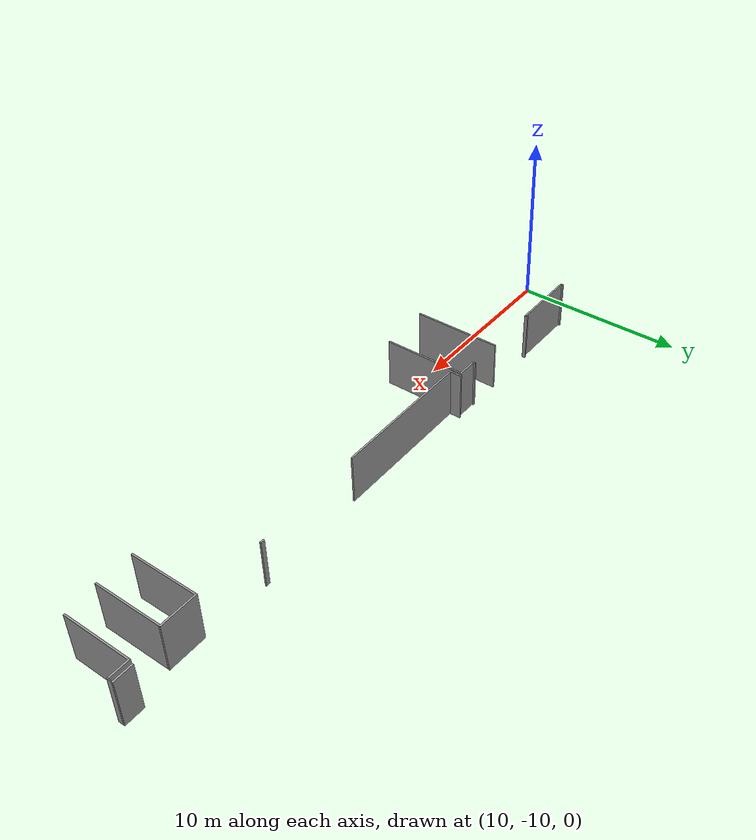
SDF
<sdf version="1.4">
 <model name="RussianRestaurant">
  <static>1</static>
  <link name="Wall_87">
   <collision name="Wall_87_Collision">
    <geometry><box><size>0.10000 0.20000 3.00000</size></box></geometry>
    <pose>10.10000 -7.55000 0 0 0 0.00000</pose>
   </collision>
   <visual name="Wall_87_Visual">
    <geometry><box><size>0.10000 0.20000 3.00000</size></box></geometry>
    <material>
     <script><uri>file://media/materials/scripts/gazebo.material</uri><name>Gazebo/Grey</name></script>
    </material>
    <pose>10.10000 -7.55000 0 0 0 0.00000</pose>
   </visual>
  </link>
  <link name="Wall_88">
   <collision name="Wall_88_Collision">
    <geometry><box><size>0.10000 0.20000 3.00000</size></box></geometry>
    <pose>14.15000 -7.55000 0 0 0 0.00000</pose>
   </collision>
   <visual name="Wall_88_Visual">
    <geometry><box><size>0.10000 0.20000 3.00000</size></box></geometry>
    <material>
     <script><uri>file://media/materials/scripts/gazebo.material</uri><name>Gazebo/Grey</name></script>
    </material>
    <pose>14.15000 -7.55000 0 0 0 0.00000</pose>
   </visual>
  </link>
  <link name="Wall_89">
   <collision name="Wall_89_Collision">
    <geometry><box><size>0.10000 5.30000 3.00000</size></box></geometry>
    <pose>17.60000 -10.10000 0 0 0 0.00000</pose>
   </collision>
   <visual name="Wall_89_Visual">
    <geometry><box><size>0.10000 5.30000 3.00000</size></box></geometry>
    <material>
     <script><uri>file://media/materials/scripts/gazebo.material</uri><name>Gazebo/Grey</name></script>
    </material>
    <pose>17.60000 -10.10000 0 0 0 0.00000</pose>
   </visual>
  </link>
  <link name="Wall_90">
   <collision name="Wall_90_Collision">
    <geometry><box><size>0.10000 0.20000 3.00000</size></box></geometry>
    <pose>19.60000 -7.55000 0 0 0 0.00000</pose>
   </collision>
   <visual name="Wall_90_Visual">
    <geometry><box><size>0.10000 0.20000 3.00000</size></box></geometry>
    <material>
     <script><uri>file://media/materials/scripts/gazebo.material</uri><name>Gazebo/Grey</name></script>
    </material>
    <pose>19.60000 -7.55000 0 0 0 0.00000</pose>
   </visual>
  </link>
  <link name="Wall_91">
   <collision name="Wall_91_Collision">
    <geometry><box><size>0.10000 0.75000 3.00000</size></box></geometry>
    <pose>21.00000 -7.82500 0 0 0 0.00000</pose>
   </collision>
   <visual name="Wall_91_Visual">
    <geometry><box><size>0.10000 0.75000 3.00000</size></box></geometry>
    <material>
     <script><uri>file://media/materials/scripts/gazebo.material</uri><name>Gazebo/Grey</name></script>
    </material>
    <pose>21.00000 -7.82500 0 0 0 0.00000</pose>
   </visual>
  </link>
  <link name="Wall_92">
   <collision name="Wall_92_Collision">
    <geometry><box><size>3.95000 0.10000 3.00000</size></box></geometry>
    <pose>12.12500 -7.60000 0 0 0 0.00000</pose>
   </collision>
   <visual name="Wall_92_Visual">
    <geometry><box><size>3.95000 0.10000 3.00000</size></box></geometry>
    <material>
     <script><uri>file://media/materials/scripts/gazebo.material</uri><name>Gazebo/Grey</name></script>
    </material>
    <pose>12.12500 -7.60000 0 0 0 0.00000</pose>
   </visual>
  </link>
  <link name="Wall_93">
   <collision name="Wall_93_Collision">
    <geometry><box><size>1.20000 0.10000 3.00000</size></box></geometry>
    <pose>20.25000 -7.60000 0 0 0 0.00000</pose>
   </collision>
   <visual name="Wall_93_Visual">
    <geometry><box><size>1.20000 0.10000 3.00000</size></box></geometry>
    <material>
     <script><uri>file://media/materials/scripts/gazebo.material</uri><name>Gazebo/Grey</name></script>
    </material>
    <pose>20.25000 -7.60000 0 0 0 0.00000</pose>
   </visual>
  </link>
  <link name="Wall_94">
   <collision name="Wall_94_Collision">
    <geometry><box><size>1.15000 0.10000 3.00000</size></box></geometry>
    <pose>45.32500 -7.60000 0 0 0 0.00000</pose>
   </collision>
   <visual name="Wall_94_Visual">
    <geometry><box><size>1.15000 0.10000 3.00000</size></box></geometry>
    <material>
     <script><uri>file://media/materials/scripts/gazebo.material</uri><name>Gazebo/Grey</name></script>
    </material>
    <pose>45.32500 -7.60000 0 0 0 0.00000</pose>
   </visual>
  </link>
  <link name="Wall_95">
   <collision name="Wall_95_Collision">
    <geometry><box><size>0.10000 4.90000 3.00000</size></box></geometry>
    <pose>20.80000 -10.10000 0 0 0 0.00000</pose>
   </collision>
   <visual name="Wall_95_Visual">
    <geometry><box><size>0.10000 4.90000 3.00000</size></box></geometry>
    <material>
     <script><uri>file://media/materials/scripts/gazebo.material</uri><name>Gazebo/Grey</name></script>
    </material>
    <pose>20.80000 -10.10000 0 0 0 0.00000</pose>
   </visual>
  </link>
  <link name="Wall_96">
   <collision name="Wall_96_Collision">
    <geometry><box><size>0.05000 0.30000 3.00000</size></box></geometry>
    <pose>45.87500 -7.80000 0 0 0 0.00000</pose>
   </collision>
   <visual name="Wall_96_Visual">
    <geometry><box><size>0.05000 0.30000 3.00000</size></box></geometry>
    <material>
     <script><uri>file://media/materials/scripts/gazebo.material</uri><name>Gazebo/Grey</name></script>
    </material>
    <pose>45.87500 -7.80000 0 0 0 0.00000</pose>
   </visual>
  </link>
  <link name="Wall_97">
   <collision name="Wall_97_Collision">
    <geometry><box><size>1.20000 0.10000 3.00000</size></box></geometry>
    <pose>45.25000 -7.90000 0 0 0 0.00000</pose>
   </collision>
   <visual name="Wall_97_Visual">
    <geometry><box><size>1.20000 0.10000 3.00000</size></box></geometry>
    <material>
     <script><uri>file://media/materials/scripts/gazebo.material</uri><name>Gazebo/Grey</name></script>
    </material>
    <pose>45.25000 -7.90000 0 0 0 0.00000</pose>
   </visual>
  </link>
  <link name="Wall_98">
   <collision name="Wall_98_Collision">
    <geometry><box><size>0.25000 0.10000 3.00000</size></box></geometry>
    <pose>36.47500 -7.95000 0 0 0 0.00000</pose>
   </collision>
   <visual name="Wall_98_Visual">
    <geometry><box><size>0.25000 0.10000 3.00000</size></box></geometry>
    <material>
     <script><uri>file://media/materials/scripts/gazebo.material</uri><name>Gazebo/Grey</name></script>
    </material>
    <pose>36.47500 -7.95000 0 0 0 0.00000</pose>
   </visual>
  </link>
  <link name="Wall_99">
   <collision name="Wall_99_Collision">
    <geometry><box><size>0.10000 4.05000 3.00000</size></box></geometry>
    <pose>44.70000 -9.97500 0 0 0 0.00000</pose>
   </collision>
   <visual name="Wall_99_Visual">
    <geometry><box><size>0.10000 4.05000 3.00000</size></box></geometry>
    <material>
     <script><uri>file://media/materials/scripts/gazebo.material</uri><name>Gazebo/Grey</name></script>
    </material>
    <pose>44.70000 -9.97500 0 0 0 0.00000</pose>
   </visual>
  </link>
  <link name="Wall_100">
   <collision name="Wall_100_Collision">
    <geometry><box><size>8.60000 0.10000 3.00000</size></box></geometry>
    <pose>25.35000 -8.15000 0 0 0 0.00000</pose>
   </collision>
   <visual name="Wall_100_Visual">
    <geometry><box><size>8.60000 0.10000 3.00000</size></box></geometry>
    <material>
     <script><uri>file://media/materials/scripts/gazebo.material</uri><name>Gazebo/Grey</name></script>
    </material>
    <pose>25.35000 -8.15000 0 0 0 0.00000</pose>
   </visual>
  </link>
  <link name="Wall_101">
   <collision name="Wall_101_Collision">
    <geometry><box><size>2.25000 0.10000 3.00000</size></box></geometry>
    <pose>41.62500 -8.15000 0 0 0 0.00000</pose>
   </collision>
   <visual name="Wall_101_Visual">
    <geometry><box><size>2.25000 0.10000 3.00000</size></box></geometry>
    <material>
     <script><uri>file://media/materials/scripts/gazebo.material</uri><name>Gazebo/Grey</name></script>
    </material>
    <pose>41.62500 -8.15000 0 0 0 0.00000</pose>
   </visual>
  </link>
  <link name="Wall_102">
   <collision name="Wall_102_Collision">
    <geometry><box><size>0.10000 4.05000 3.00000</size></box></geometry>
    <pose>40.55000 -10.22500 0 0 0 0.00000</pose>
   </collision>
   <visual name="Wall_102_Visual">
    <geometry><box><size>0.10000 4.05000 3.00000</size></box></geometry>
    <material>
     <script><uri>file://media/materials/scripts/gazebo.material</uri><name>Gazebo/Grey</name></script>
    </material>
    <pose>40.55000 -10.22500 0 0 0 0.00000</pose>
   </visual>
  </link>
  <link name="Wall_103">
   <collision name="Wall_103_Collision">
    <geometry><box><size>0.10000 4.05000 3.00000</size></box></geometry>
    <pose>42.70000 -10.22500 0 0 0 0.00000</pose>
   </collision>
   <visual name="Wall_103_Visual">
    <geometry><box><size>0.10000 4.05000 3.00000</size></box></geometry>
    <material>
     <script><uri>file://media/materials/scripts/gazebo.material</uri><name>Gazebo/Grey</name></script>
    </material>
    <pose>42.70000 -10.22500 0 0 0 0.00000</pose>
   </visual>
  </link>
 </model>
</sdf>
